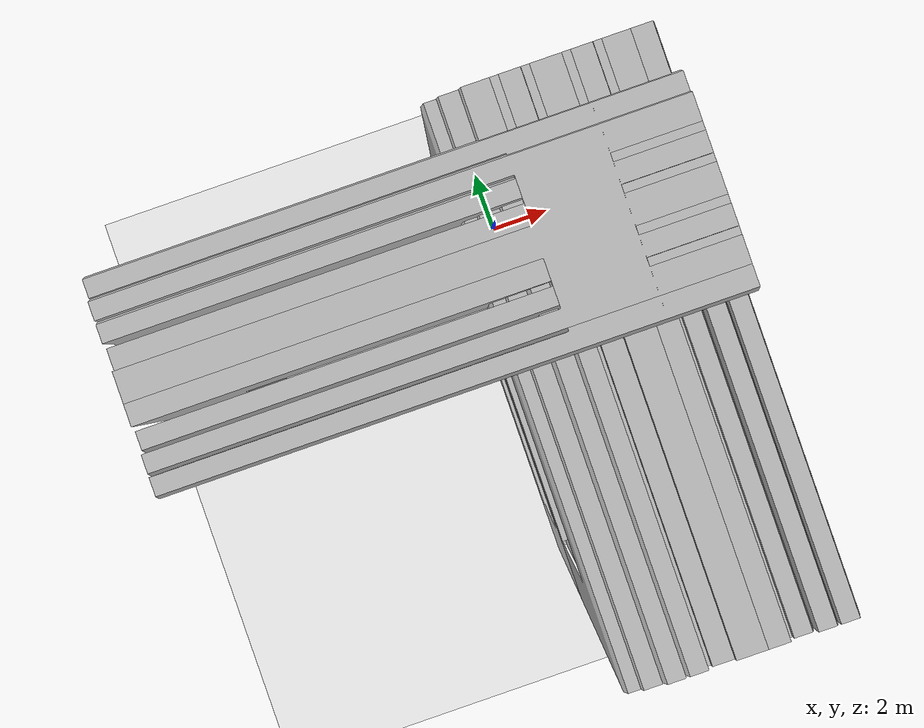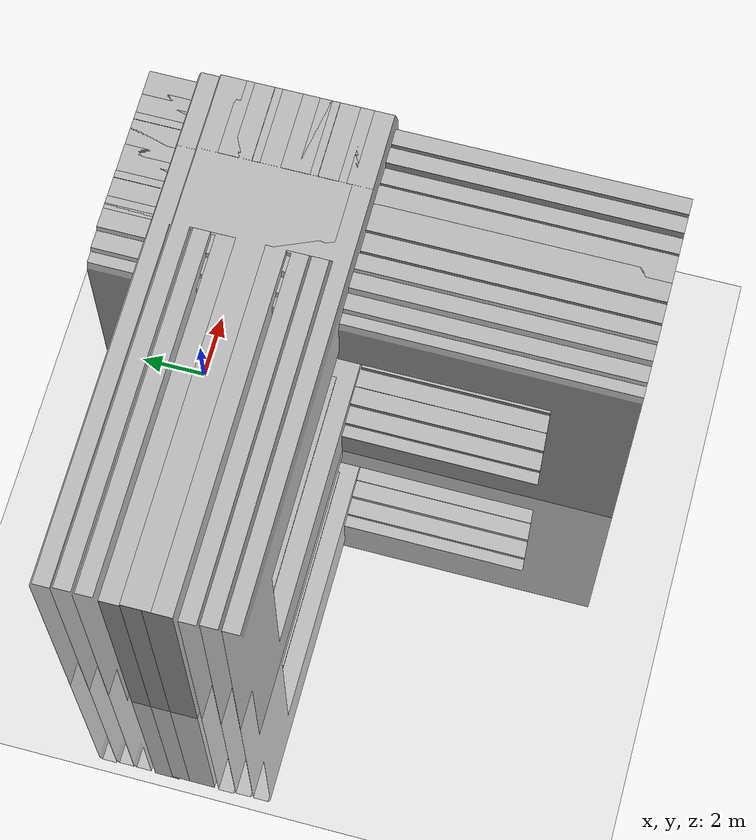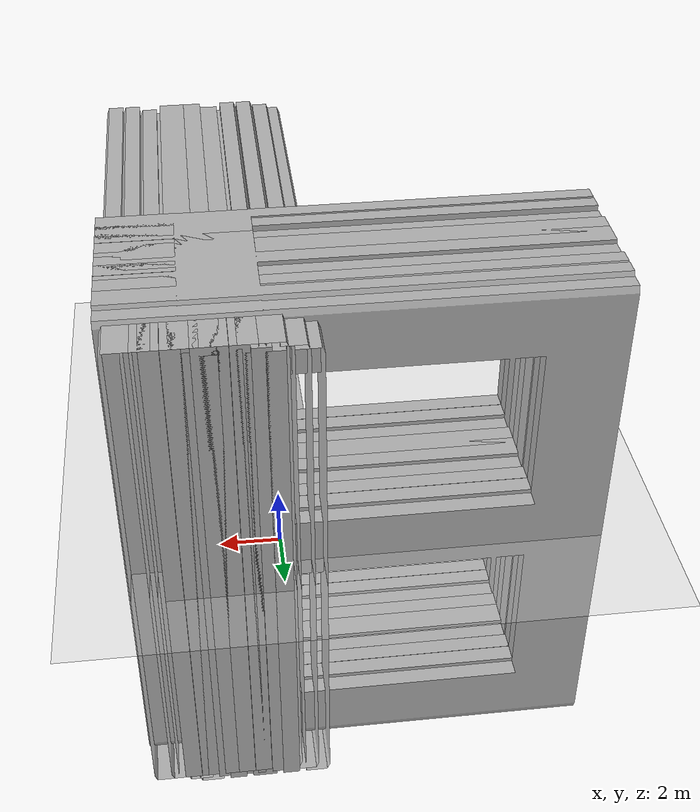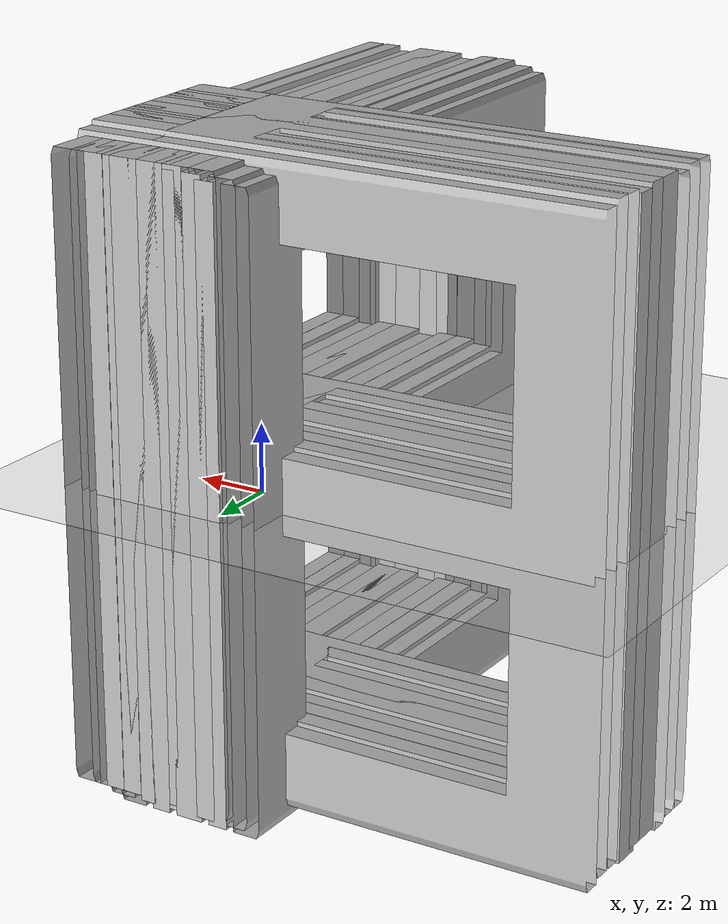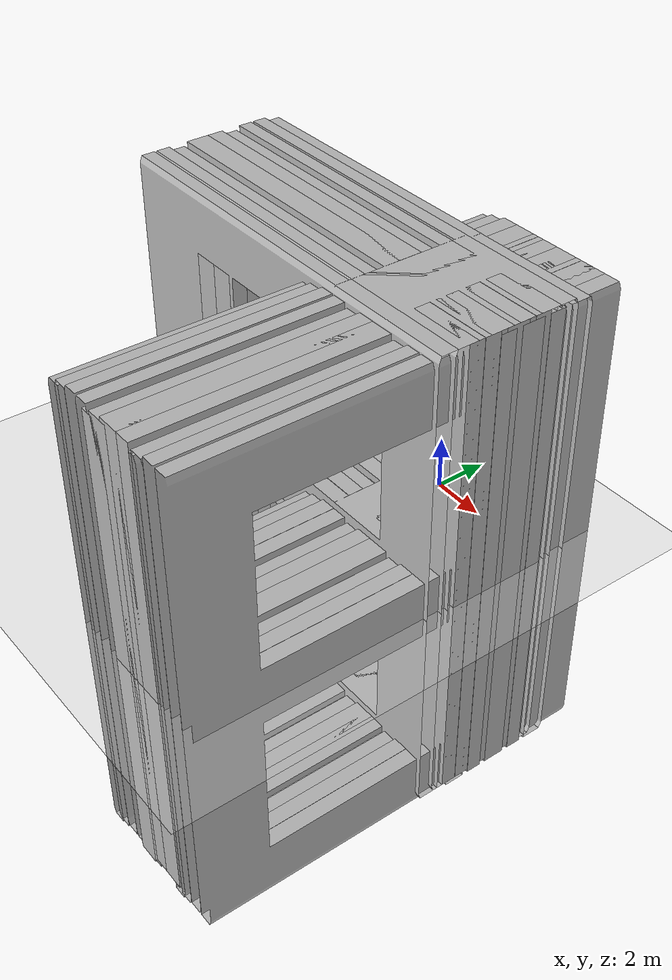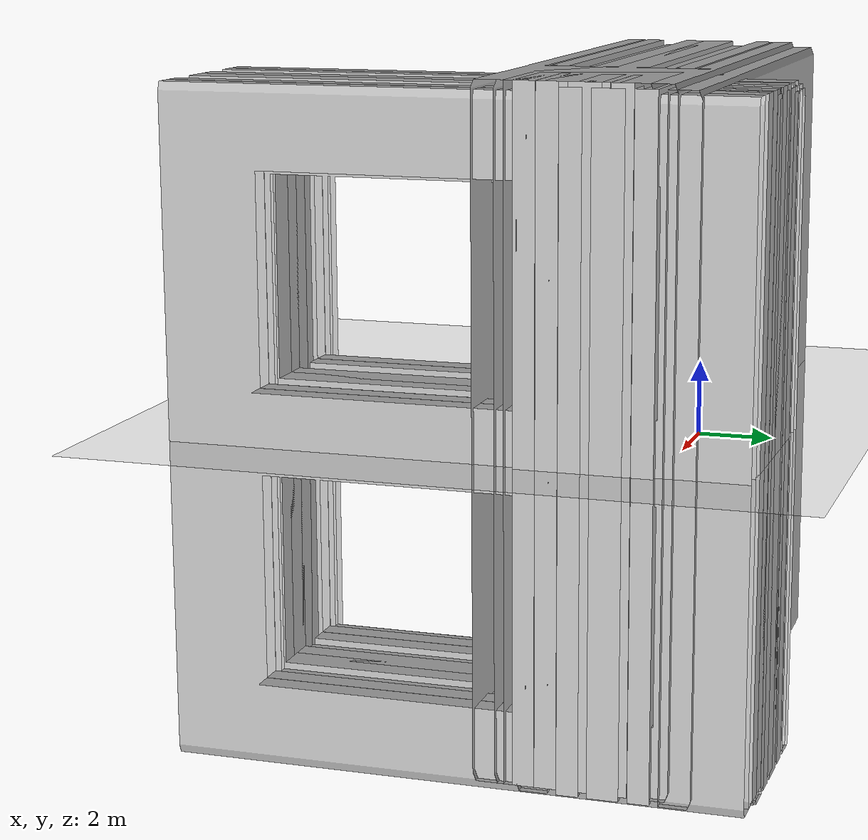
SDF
<sdf version="1.4">
 <world name="default">
  <physics type="ode">
   <gravity>0 0 -9.81</gravity>
   <max_step_size>0.001</max_step_size>
   <real_time_factor>1</real_time_factor>
  </physics>
  <include><uri>model://sun</uri></include>
  <include><uri>model://ground_plane</uri></include>
  <include>
   <name>pallet600x1000x140mm</name>
   <uri>model://pallet600x1000x140mm</uri>
   <pose>1.0 0 0 0 0 0</pose>
  </include>
  <include>
   <name>pallet600x1000x140mm</name>
   <uri>model://pallet600x1000x140mm</uri>
   <pose>1.4 0 0.14 0 0 0</pose>
  </include>
  <include>
   <name>pallet600x1000x140mm</name>
   <uri>model://pallet600x1000x140mm</uri>
   <pose>2.0 0 0.28 0 0 0</pose>
  </include>
  <include>
   <name>pallet600x1000x140mm</name>
   <uri>model://pallet600x1000x140mm</uri>
   <pose>2.6 0 0.28 0 0 0</pose>
  </include>
  <include>
   <name>pallet600x1000x140mm</name>
   <uri>model://pallet600x1000x140mm</uri>
   <pose>2.7 -1.3 0.42 0 0 -1.57</pose>
  </include>
  <include>
   <name>pallet600x1000x140mm</name>
   <uri>model://pallet600x1000x140mm</uri>
   <pose>2.7 -1.9 0.56 0 0 -1.57</pose>
  </include>
  <include>
   <name>pallet600x1000x140mm</name>
   <uri>model://pallet600x1000x140mm</uri>
   <pose>2.7 -2.5 0.56 0 0 -1.57</pose>
  </include>
 </world>
</sdf>

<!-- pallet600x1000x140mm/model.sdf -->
<sdf version="1.4">
	<model name="pallet600x1000x140mm">
		<static>true</static>
		<link name="link">
			<pose>0 0 0.06 0 0 0</pose>
			<collision name="collision">
				<geometry>
					<mesh>
						<uri>model://pallet480x1000x140mm/mesh/pallet.dae</uri>
						<!-- original size = 1.016 x 0.090678 x 0.090678 m -->
						<!-- final size = 0.6 x 1 x 0.14 m -->
						<scale>0.591 11.028 1.5439</scale>
					</mesh>
				</geometry>
			</collision>
			<visual name="visual">
				<geometry>
					<mesh>
						<uri>model://pallet480x1000x140mm/mesh/pallet.dae</uri>
						<!-- original size = 1.016 x 0.090678 x 0.090678 m -->
						<!-- final size = 0.6 x 1 x 0.14 m -->
						<scale>0.591 11.028 1.5439</scale>
					</mesh>
				</geometry>
			</visual>
		</link>
	</model>
</sdf>
